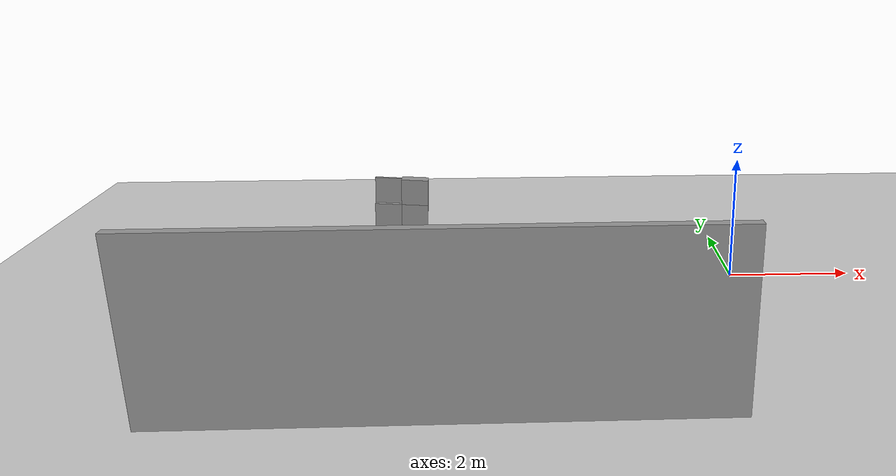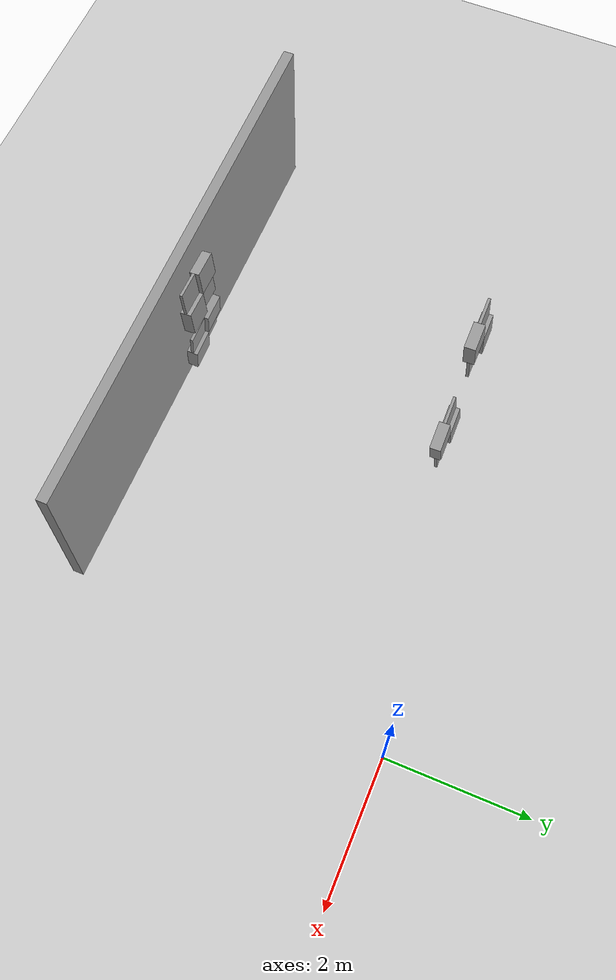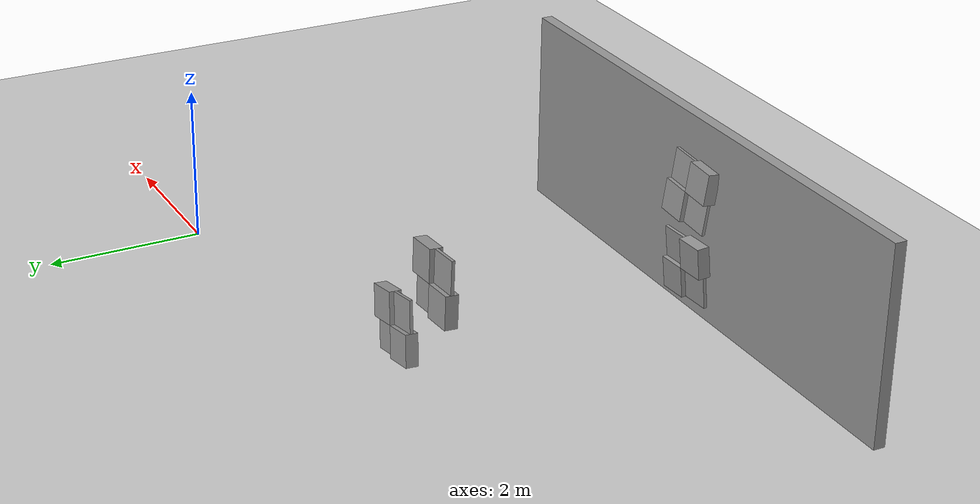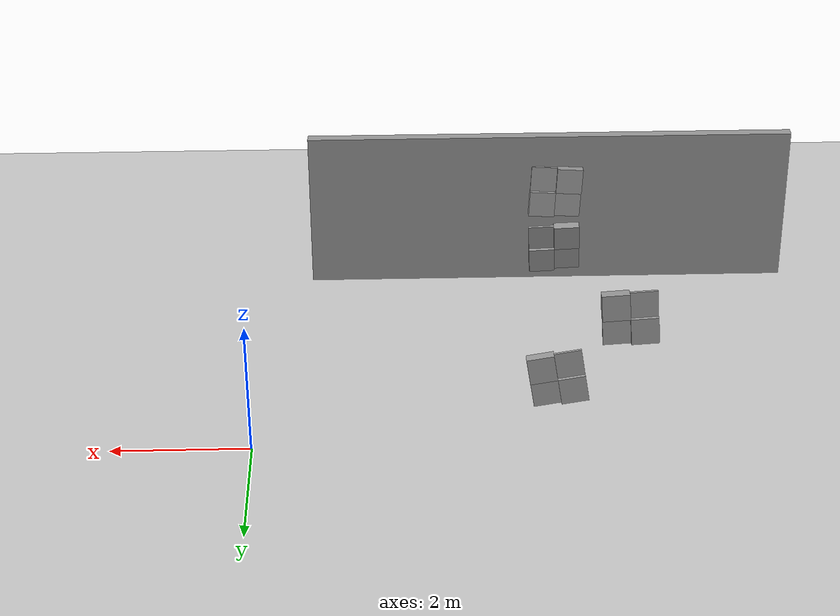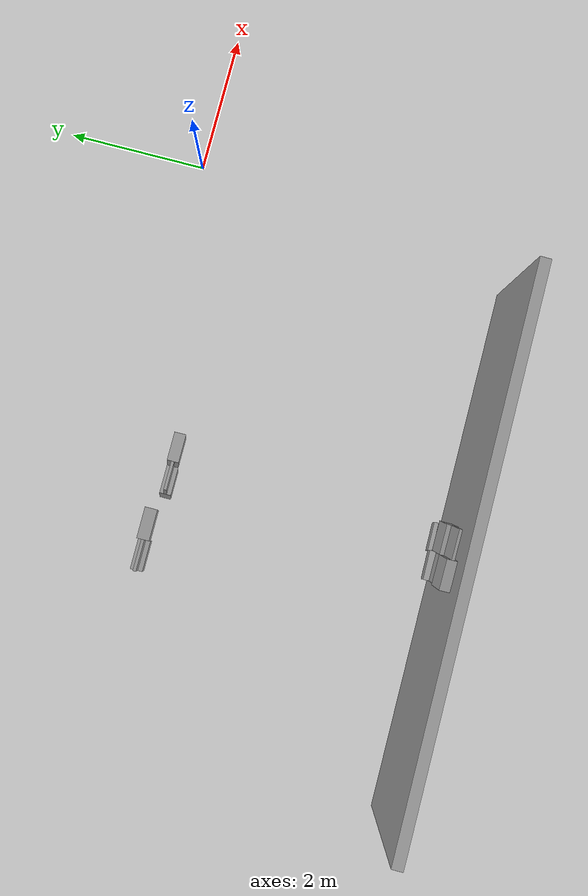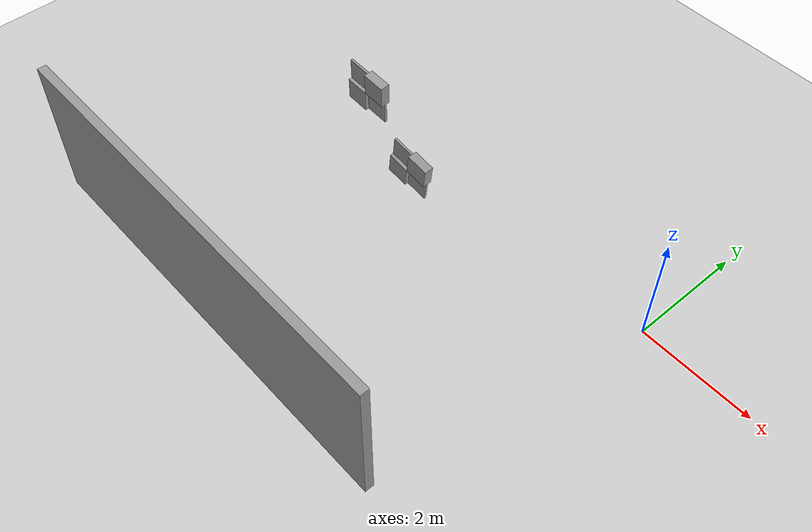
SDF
<sdf version="1.7">
 <world name="default">
  <model name="demo_clean">
   <static>1</static>
   <link name="Wall_2">
    <collision name="Wall_2_Collision">
     <geometry><box><size>7.5 0.15 2.5</size></box></geometry>
     <pose>0 0 1.25 0 -0 0</pose>
     <surface>
      <friction>
       <ode><mu>1</mu><mu2>1</mu2><fdir1>0 0 0</fdir1><slip1>0</slip1><slip2>0</slip2></ode>
       <torsional>
        <coefficient>1</coefficient>
        <patch_radius>0</patch_radius>
        <surface_radius>0</surface_radius>
        <use_patch_radius>1</use_patch_radius>
        <ode><slip>0</slip></ode>
       </torsional>
      </friction>
      <bounce><restitution_coefficient>0</restitution_coefficient><threshold>1e+06</threshold></bounce>
      <contact>
       <collide_without_contact>0</collide_without_contact>
       <collide_without_contact_bitmask>1</collide_without_contact_bitmask>
       <collide_bitmask>1</collide_bitmask>
       <ode>
        <soft_cfm>0</soft_cfm>
        <soft_erp>0.2</soft_erp>
        <kp>1e+13</kp>
        <kd>1</kd>
        <max_vel>0.01</max_vel>
        <min_depth>0</min_depth>
       </ode>
       <bullet>
        <split_impulse>1</split_impulse>
        <split_impulse_penetration_threshold>-0.01</split_impulse_penetration_threshold>
        <soft_cfm>0</soft_cfm>
        <soft_erp>0.2</soft_erp>
        <kp>1e+13</kp>
        <kd>1</kd>
       </bullet>
      </contact>
     </surface>
    </collision>
    <visual name="Wall_2_Visual">
     <geometry><box><size>7.5 0.15 2.5</size></box></geometry>
     <material>
      <script><name>Gazebo/Grey</name><uri>file://media/materials/scripts/gazebo.material</uri></script>
      <ambient>1 1 1 1</ambient>
      <shader type="pixel"><normal_map>default</normal_map></shader>
     </material>
     <pose>0 0 1.25 0 -0 0</pose>
    </visual>
    <pose>-4.49149 -4.74 0 0 -0 0</pose>
   </link>
  </model>
  <model name="ground_plane">
   <static>1</static>
   <link name="link">
    <collision name="collision">
     <geometry><plane><normal>0 0 1</normal><size>100 100</size></plane></geometry>
     <surface>
      <contact><collide_bitmask>65535</collide_bitmask></contact>
      <friction><ode><mu>100</mu><mu2>50</mu2></ode></friction>
     </surface>
    </collision>
    <visual name="visual">
     <cast_shadows>0</cast_shadows>
     <geometry><plane><normal>0 0 1</normal><size>100 100</size></plane></geometry>
     <material>
      <script><uri>file://media/materials/scripts/gazebo.material</uri><name>Gazebo/Grey</name></script>
     </material>
    </visual>
   </link>
  </model>
  <model name="wall_slate_21">
   <static>1</static>
   <link name="link_0">
    <inertial><mass>1</mass></inertial>
    <gravity>0</gravity>
    <visual name="visual">
     <pose>0 0.2 0.2 0 -0 0</pose>
     <geometry><box><size>0.16 0.4 0.4</size></box></geometry>
     <material>
      <lighting>1</lighting>
      <script><uri>file://media/materials/scripts/gazebo.material</uri><name>Gazebo/Grey</name></script>
      <shader type="pixel"><normal_map>__default__</normal_map></shader>
      <ambient>0.3 0.3 0.3 1</ambient>
      <diffuse>0.7 0.7 0.7 1</diffuse>
      <specular>0.01 0.01 0.01 1</specular>
      <emissive>0 0 0 1</emissive>
     </material>
    </visual>
    <visual name="ModelPreview_0::link_0::visual_1">
     <pose>0 0.2 -0.2 0 -0 0</pose>
     <geometry><box><size>0.04 0.4 0.4</size></box></geometry>
     <material>
      <lighting>1</lighting>
      <script><uri>file://media/materials/scripts/gazebo.material</uri><name>Gazebo/Grey</name></script>
      <shader type="pixel"><normal_map>__default__</normal_map></shader>
      <ambient>0.3 0.3 0.3 1</ambient>
      <diffuse>0.7 0.7 0.7 1</diffuse>
      <specular>0.01 0.01 0.01 1</specular>
      <emissive>0 0 0 1</emissive>
     </material>
    </visual>
    <visual name="ModelPreview_0::link_0::visual_2">
     <pose>0 -0.2 0.2 0 -0 0</pose>
     <geometry><box><size>0.04 0.4 0.4</size></box></geometry>
     <material>
      <lighting>1</lighting>
      <script><uri>file://media/materials/scripts/gazebo.material</uri><name>Gazebo/Grey</name></script>
      <shader type="pixel"><normal_map>__default__</normal_map></shader>
      <ambient>0.3 0.3 0.3 1</ambient>
      <diffuse>0.7 0.7 0.7 1</diffuse>
      <specular>0.01 0.01 0.01 1</specular>
      <emissive>0 0 0 1</emissive>
     </material>
    </visual>
    <visual name="ModelPreview_0::link_0::visual_3">
     <pose>0 -0.2 -0.2 0 -0 0</pose>
     <geometry><box><size>0.16 0.4 0.4</size></box></geometry>
     <material>
      <lighting>1</lighting>
      <script><uri>file://media/materials/scripts/gazebo.material</uri><name>Gazebo/Grey</name></script>
      <shader type="pixel"><normal_map>__default__</normal_map></shader>
      <ambient>0.3 0.3 0.3 1</ambient>
      <diffuse>0.7 0.7 0.7 1</diffuse>
      <specular>0.01 0.01 0.01 1</specular>
      <emissive>0 0 0 1</emissive>
     </material>
    </visual>
    <collision name="collision_2">
     <pose>0 -0.2 0.2 0 -0 0</pose>
     <geometry><box><size>0.04 0.4 0.4</size></box></geometry>
     <surface>
      <friction>
       <ode><mu>1</mu><mu2>1</mu2><fdir1>0 0 0</fdir1><slip1>0</slip1><slip2>0</slip2></ode>
       <torsional>
        <coefficient>1</coefficient>
        <patch_radius>0</patch_radius>
        <surface_radius>0</surface_radius>
        <use_patch_radius>1</use_patch_radius>
        <ode><slip>0</slip></ode>
       </torsional>
      </friction>
      <bounce><restitution_coefficient>0</restitution_coefficient><threshold>1e+06</threshold></bounce>
      <contact>
       <collide_without_contact>0</collide_without_contact>
       <collide_without_contact_bitmask>1</collide_without_contact_bitmask>
       <collide_bitmask>1</collide_bitmask>
       <ode>
        <soft_cfm>0</soft_cfm>
        <soft_erp>0.2</soft_erp>
        <kp>1e+13</kp>
        <kd>1</kd>
        <max_vel>0.01</max_vel>
        <min_depth>0</min_depth>
       </ode>
       <bullet>
        <split_impulse>1</split_impulse>
        <split_impulse_penetration_threshold>-0.01</split_impulse_penetration_threshold>
        <soft_cfm>0</soft_cfm>
        <soft_erp>0.2</soft_erp>
        <kp>1e+13</kp>
        <kd>1</kd>
       </bullet>
      </contact>
     </surface>
    </collision>
    <collision name="collision_1">
     <pose>0 0.2 -0.2 0 -0 0</pose>
     <geometry><box><size>0.04 0.4 0.4</size></box></geometry>
     <surface>
      <friction>
       <ode><mu>1</mu><mu2>1</mu2><fdir1>0 0 0</fdir1><slip1>0</slip1><slip2>0</slip2></ode>
       <torsional>
        <coefficient>1</coefficient>
        <patch_radius>0</patch_radius>
        <surface_radius>0</surface_radius>
        <use_patch_radius>1</use_patch_radius>
        <ode><slip>0</slip></ode>
       </torsional>
      </friction>
      <bounce><restitution_coefficient>0</restitution_coefficient><threshold>1e+06</threshold></bounce>
      <contact>
       <collide_without_contact>0</collide_without_contact>
       <collide_without_contact_bitmask>1</collide_without_contact_bitmask>
       <collide_bitmask>1</collide_bitmask>
       <ode>
        <soft_cfm>0</soft_cfm>
        <soft_erp>0.2</soft_erp>
        <kp>1e+13</kp>
        <kd>1</kd>
        <max_vel>0.01</max_vel>
        <min_depth>0</min_depth>
       </ode>
       <bullet>
        <split_impulse>1</split_impulse>
        <split_impulse_penetration_threshold>-0.01</split_impulse_penetration_threshold>
        <soft_cfm>0</soft_cfm>
        <soft_erp>0.2</soft_erp>
        <kp>1e+13</kp>
        <kd>1</kd>
       </bullet>
      </contact>
     </surface>
    </collision>
    <collision name="collision_4">
     <pose>0 0.2 0.2 0 -0 0</pose>
     <geometry><box><size>0.16 0.4 0.4</size></box></geometry>
     <surface>
      <friction>
       <ode><mu>1</mu><mu2>1</mu2><fdir1>0 0 0</fdir1><slip1>0</slip1><slip2>0</slip2></ode>
       <torsional>
        <coefficient>1</coefficient>
        <patch_radius>0</patch_radius>
        <surface_radius>0</surface_radius>
        <use_patch_radius>1</use_patch_radius>
        <ode><slip>0</slip></ode>
       </torsional>
      </friction>
      <bounce><restitution_coefficient>0</restitution_coefficient><threshold>1e+06</threshold></bounce>
      <contact>
       <collide_without_contact>0</collide_without_contact>
       <collide_without_contact_bitmask>1</collide_without_contact_bitmask>
       <collide_bitmask>1</collide_bitmask>
       <ode>
        <soft_cfm>0</soft_cfm>
        <soft_erp>0.2</soft_erp>
        <kp>1e+13</kp>
        <kd>1</kd>
        <max_vel>0.01</max_vel>
        <min_depth>0</min_depth>
       </ode>
       <bullet>
        <split_impulse>1</split_impulse>
        <split_impulse_penetration_threshold>-0.01</split_impulse_penetration_threshold>
        <soft_cfm>0</soft_cfm>
        <soft_erp>0.2</soft_erp>
        <kp>1e+13</kp>
        <kd>1</kd>
       </bullet>
      </contact>
     </surface>
    </collision>
    <collision name="collision_3">
     <pose>0 -0.2 -0.2 0 -0 0</pose>
     <geometry><box><size>0.16 0.4 0.4</size></box></geometry>
     <surface>
      <friction>
       <ode><mu>1</mu><mu2>1</mu2><fdir1>0 0 0</fdir1><slip1>0</slip1><slip2>0</slip2></ode>
       <torsional>
        <coefficient>1</coefficient>
        <patch_radius>0</patch_radius>
        <surface_radius>0</surface_radius>
        <use_patch_radius>1</use_patch_radius>
        <ode><slip>0</slip></ode>
       </torsional>
      </friction>
      <bounce><restitution_coefficient>0</restitution_coefficient><threshold>1e+06</threshold></bounce>
      <contact>
       <collide_without_contact>0</collide_without_contact>
       <collide_without_contact_bitmask>1</collide_without_contact_bitmask>
       <collide_bitmask>1</collide_bitmask>
       <ode>
        <soft_cfm>0</soft_cfm>
        <soft_erp>0.2</soft_erp>
        <kp>1e+13</kp>
        <kd>1</kd>
        <max_vel>0.01</max_vel>
        <min_depth>0</min_depth>
       </ode>
       <bullet>
        <split_impulse>1</split_impulse>
        <split_impulse_penetration_threshold>-0.01</split_impulse_penetration_threshold>
        <soft_cfm>0</soft_cfm>
        <soft_erp>0.2</soft_erp>
        <kp>1e+13</kp>
        <kd>1</kd>
       </bullet>
      </contact>
     </surface>
    </collision>
   </link>
   <pose>-5.37149 -0.783826 1.6 -0.06 0.06 -1.5659</pose>
  </model>
  <model name="wall_slate_46">
   <static>1</static>
   <link name="link_0">
    <inertial><mass>1</mass></inertial>
    <gravity>0</gravity>
    <visual name="visual">
     <pose>0 0.2 0.2 0 -0 0</pose>
     <geometry><box><size>0.16 0.4 0.4</size></box></geometry>
     <material>
      <lighting>1</lighting>
      <script><uri>file://media/materials/scripts/gazebo.material</uri><name>Gazebo/Grey</name></script>
      <shader type="pixel"><normal_map>__default__</normal_map></shader>
      <ambient>0.3 0.3 0.3 1</ambient>
      <diffuse>0.7 0.7 0.7 1</diffuse>
      <specular>0.01 0.01 0.01 1</specular>
      <emissive>0 0 0 1</emissive>
     </material>
    </visual>
    <visual name="ModelPreview_0::link_0::visual_1">
     <pose>0 0.2 -0.2 0 -0 0</pose>
     <geometry><box><size>0.04 0.4 0.4</size></box></geometry>
     <material>
      <lighting>1</lighting>
      <script><uri>file://media/materials/scripts/gazebo.material</uri><name>Gazebo/Grey</name></script>
      <shader type="pixel"><normal_map>__default__</normal_map></shader>
      <ambient>0.3 0.3 0.3 1</ambient>
      <diffuse>0.7 0.7 0.7 1</diffuse>
      <specular>0.01 0.01 0.01 1</specular>
      <emissive>0 0 0 1</emissive>
     </material>
    </visual>
    <visual name="ModelPreview_0::link_0::visual_2">
     <pose>0 -0.2 0.2 0 -0 0</pose>
     <geometry><box><size>0.04 0.4 0.4</size></box></geometry>
     <material>
      <lighting>1</lighting>
      <script><uri>file://media/materials/scripts/gazebo.material</uri><name>Gazebo/Grey</name></script>
      <shader type="pixel"><normal_map>__default__</normal_map></shader>
      <ambient>0.3 0.3 0.3 1</ambient>
      <diffuse>0.7 0.7 0.7 1</diffuse>
      <specular>0.01 0.01 0.01 1</specular>
      <emissive>0 0 0 1</emissive>
     </material>
    </visual>
    <visual name="ModelPreview_0::link_0::visual_3">
     <pose>0 -0.2 -0.2 0 -0 0</pose>
     <geometry><box><size>0.16 0.4 0.4</size></box></geometry>
     <material>
      <lighting>1</lighting>
      <script><uri>file://media/materials/scripts/gazebo.material</uri><name>Gazebo/Grey</name></script>
      <shader type="pixel"><normal_map>__default__</normal_map></shader>
      <ambient>0.3 0.3 0.3 1</ambient>
      <diffuse>0.7 0.7 0.7 1</diffuse>
      <specular>0.01 0.01 0.01 1</specular>
      <emissive>0 0 0 1</emissive>
     </material>
    </visual>
    <collision name="collision_2">
     <pose>0 -0.2 0.2 0 -0 0</pose>
     <geometry><box><size>0.04 0.4 0.4</size></box></geometry>
     <surface>
      <friction>
       <ode><mu>1</mu><mu2>1</mu2><fdir1>0 0 0</fdir1><slip1>0</slip1><slip2>0</slip2></ode>
       <torsional>
        <coefficient>1</coefficient>
        <patch_radius>0</patch_radius>
        <surface_radius>0</surface_radius>
        <use_patch_radius>1</use_patch_radius>
        <ode><slip>0</slip></ode>
       </torsional>
      </friction>
      <bounce><restitution_coefficient>0</restitution_coefficient><threshold>1e+06</threshold></bounce>
      <contact>
       <collide_without_contact>0</collide_without_contact>
       <collide_without_contact_bitmask>1</collide_without_contact_bitmask>
       <collide_bitmask>1</collide_bitmask>
       <ode>
        <soft_cfm>0</soft_cfm>
        <soft_erp>0.2</soft_erp>
        <kp>1e+13</kp>
        <kd>1</kd>
        <max_vel>0.01</max_vel>
        <min_depth>0</min_depth>
       </ode>
       <bullet>
        <split_impulse>1</split_impulse>
        <split_impulse_penetration_threshold>-0.01</split_impulse_penetration_threshold>
        <soft_cfm>0</soft_cfm>
        <soft_erp>0.2</soft_erp>
        <kp>1e+13</kp>
        <kd>1</kd>
       </bullet>
      </contact>
     </surface>
    </collision>
    <collision name="collision_1">
     <pose>0 0.2 -0.2 0 -0 0</pose>
     <geometry><box><size>0.04 0.4 0.4</size></box></geometry>
     <surface>
      <friction>
       <ode><mu>1</mu><mu2>1</mu2><fdir1>0 0 0</fdir1><slip1>0</slip1><slip2>0</slip2></ode>
       <torsional>
        <coefficient>1</coefficient>
        <patch_radius>0</patch_radius>
        <surface_radius>0</surface_radius>
        <use_patch_radius>1</use_patch_radius>
        <ode><slip>0</slip></ode>
       </torsional>
      </friction>
      <bounce><restitution_coefficient>0</restitution_coefficient><threshold>1e+06</threshold></bounce>
      <contact>
       <collide_without_contact>0</collide_without_contact>
       <collide_without_contact_bitmask>1</collide_without_contact_bitmask>
       <collide_bitmask>1</collide_bitmask>
       <ode>
        <soft_cfm>0</soft_cfm>
        <soft_erp>0.2</soft_erp>
        <kp>1e+13</kp>
        <kd>1</kd>
        <max_vel>0.01</max_vel>
        <min_depth>0</min_depth>
       </ode>
       <bullet>
        <split_impulse>1</split_impulse>
        <split_impulse_penetration_threshold>-0.01</split_impulse_penetration_threshold>
        <soft_cfm>0</soft_cfm>
        <soft_erp>0.2</soft_erp>
        <kp>1e+13</kp>
        <kd>1</kd>
       </bullet>
      </contact>
     </surface>
    </collision>
    <collision name="collision_4">
     <pose>0 0.2 0.2 0 -0 0</pose>
     <geometry><box><size>0.16 0.4 0.4</size></box></geometry>
     <surface>
      <friction>
       <ode><mu>1</mu><mu2>1</mu2><fdir1>0 0 0</fdir1><slip1>0</slip1><slip2>0</slip2></ode>
       <torsional>
        <coefficient>1</coefficient>
        <patch_radius>0</patch_radius>
        <surface_radius>0</surface_radius>
        <use_patch_radius>1</use_patch_radius>
        <ode><slip>0</slip></ode>
       </torsional>
      </friction>
      <bounce><restitution_coefficient>0</restitution_coefficient><threshold>1e+06</threshold></bounce>
      <contact>
       <collide_without_contact>0</collide_without_contact>
       <collide_without_contact_bitmask>1</collide_without_contact_bitmask>
       <collide_bitmask>1</collide_bitmask>
       <ode>
        <soft_cfm>0</soft_cfm>
        <soft_erp>0.2</soft_erp>
        <kp>1e+13</kp>
        <kd>1</kd>
        <max_vel>0.01</max_vel>
        <min_depth>0</min_depth>
       </ode>
       <bullet>
        <split_impulse>1</split_impulse>
        <split_impulse_penetration_threshold>-0.01</split_impulse_penetration_threshold>
        <soft_cfm>0</soft_cfm>
        <soft_erp>0.2</soft_erp>
        <kp>1e+13</kp>
        <kd>1</kd>
       </bullet>
      </contact>
     </surface>
    </collision>
    <collision name="collision_3">
     <pose>0 -0.2 -0.2 0 -0 0</pose>
     <geometry><box><size>0.16 0.4 0.4</size></box></geometry>
     <surface>
      <friction>
       <ode><mu>1</mu><mu2>1</mu2><fdir1>0 0 0</fdir1><slip1>0</slip1><slip2>0</slip2></ode>
       <torsional>
        <coefficient>1</coefficient>
        <patch_radius>0</patch_radius>
        <surface_radius>0</surface_radius>
        <use_patch_radius>1</use_patch_radius>
        <ode><slip>0</slip></ode>
       </torsional>
      </friction>
      <bounce><restitution_coefficient>0</restitution_coefficient><threshold>1e+06</threshold></bounce>
      <contact>
       <collide_without_contact>0</collide_without_contact>
       <collide_without_contact_bitmask>1</collide_without_contact_bitmask>
       <collide_bitmask>1</collide_bitmask>
       <ode>
        <soft_cfm>0</soft_cfm>
        <soft_erp>0.2</soft_erp>
        <kp>1e+13</kp>
        <kd>1</kd>
        <max_vel>0.01</max_vel>
        <min_depth>0</min_depth>
       </ode>
       <bullet>
        <split_impulse>1</split_impulse>
        <split_impulse_penetration_threshold>-0.01</split_impulse_penetration_threshold>
        <soft_cfm>0</soft_cfm>
        <soft_erp>0.2</soft_erp>
        <kp>1e+13</kp>
        <kd>1</kd>
       </bullet>
      </contact>
     </surface>
    </collision>
   </link>
   <pose>-4.59149 -4.565 1.6 -0.06 -0.1 1.5757</pose>
  </model>
  <model name="wall_slate_50">
   <static>1</static>
   <link name="link_0">
    <inertial><mass>1</mass></inertial>
    <gravity>0</gravity>
    <visual name="visual">
     <pose>0 0.2 0.2 0 -0 0</pose>
     <geometry><box><size>0.16 0.4 0.4</size></box></geometry>
     <material>
      <lighting>1</lighting>
      <script><uri>file://media/materials/scripts/gazebo.material</uri><name>Gazebo/Grey</name></script>
      <shader type="pixel"><normal_map>__default__</normal_map></shader>
      <ambient>0.3 0.3 0.3 1</ambient>
      <diffuse>0.7 0.7 0.7 1</diffuse>
      <specular>0.01 0.01 0.01 1</specular>
      <emissive>0 0 0 1</emissive>
     </material>
    </visual>
    <visual name="ModelPreview_0::link_0::visual_1">
     <pose>0 0.2 -0.2 0 -0 0</pose>
     <geometry><box><size>0.04 0.4 0.4</size></box></geometry>
     <material>
      <lighting>1</lighting>
      <script><uri>file://media/materials/scripts/gazebo.material</uri><name>Gazebo/Grey</name></script>
      <shader type="pixel"><normal_map>__default__</normal_map></shader>
      <ambient>0.3 0.3 0.3 1</ambient>
      <diffuse>0.7 0.7 0.7 1</diffuse>
      <specular>0.01 0.01 0.01 1</specular>
      <emissive>0 0 0 1</emissive>
     </material>
    </visual>
    <visual name="ModelPreview_0::link_0::visual_2">
     <pose>0 -0.2 0.2 0 -0 0</pose>
     <geometry><box><size>0.04 0.4 0.4</size></box></geometry>
     <material>
      <lighting>1</lighting>
      <script><uri>file://media/materials/scripts/gazebo.material</uri><name>Gazebo/Grey</name></script>
      <shader type="pixel"><normal_map>__default__</normal_map></shader>
      <ambient>0.3 0.3 0.3 1</ambient>
      <diffuse>0.7 0.7 0.7 1</diffuse>
      <specular>0.01 0.01 0.01 1</specular>
      <emissive>0 0 0 1</emissive>
     </material>
    </visual>
    <visual name="ModelPreview_0::link_0::visual_3">
     <pose>0 -0.2 -0.2 0 -0 0</pose>
     <geometry><box><size>0.16 0.4 0.4</size></box></geometry>
     <material>
      <lighting>1</lighting>
      <script><uri>file://media/materials/scripts/gazebo.material</uri><name>Gazebo/Grey</name></script>
      <shader type="pixel"><normal_map>__default__</normal_map></shader>
      <ambient>0.3 0.3 0.3 1</ambient>
      <diffuse>0.7 0.7 0.7 1</diffuse>
      <specular>0.01 0.01 0.01 1</specular>
      <emissive>0 0 0 1</emissive>
     </material>
    </visual>
    <collision name="collision_2">
     <pose>0 -0.2 0.2 0 -0 0</pose>
     <geometry><box><size>0.04 0.4 0.4</size></box></geometry>
     <surface>
      <friction>
       <ode><mu>1</mu><mu2>1</mu2><fdir1>0 0 0</fdir1><slip1>0</slip1><slip2>0</slip2></ode>
       <torsional>
        <coefficient>1</coefficient>
        <patch_radius>0</patch_radius>
        <surface_radius>0</surface_radius>
        <use_patch_radius>1</use_patch_radius>
        <ode><slip>0</slip></ode>
       </torsional>
      </friction>
      <bounce><restitution_coefficient>0</restitution_coefficient><threshold>1e+06</threshold></bounce>
      <contact>
       <collide_without_contact>0</collide_without_contact>
       <collide_without_contact_bitmask>1</collide_without_contact_bitmask>
       <collide_bitmask>1</collide_bitmask>
       <ode>
        <soft_cfm>0</soft_cfm>
        <soft_erp>0.2</soft_erp>
        <kp>1e+13</kp>
        <kd>1</kd>
        <max_vel>0.01</max_vel>
        <min_depth>0</min_depth>
       </ode>
       <bullet>
        <split_impulse>1</split_impulse>
        <split_impulse_penetration_threshold>-0.01</split_impulse_penetration_threshold>
        <soft_cfm>0</soft_cfm>
        <soft_erp>0.2</soft_erp>
        <kp>1e+13</kp>
        <kd>1</kd>
       </bullet>
      </contact>
     </surface>
    </collision>
    <collision name="collision_1">
     <pose>0 0.2 -0.2 0 -0 0</pose>
     <geometry><box><size>0.04 0.4 0.4</size></box></geometry>
     <surface>
      <friction>
       <ode><mu>1</mu><mu2>1</mu2><fdir1>0 0 0</fdir1><slip1>0</slip1><slip2>0</slip2></ode>
       <torsional>
        <coefficient>1</coefficient>
        <patch_radius>0</patch_radius>
        <surface_radius>0</surface_radius>
        <use_patch_radius>1</use_patch_radius>
        <ode><slip>0</slip></ode>
       </torsional>
      </friction>
      <bounce><restitution_coefficient>0</restitution_coefficient><threshold>1e+06</threshold></bounce>
      <contact>
       <collide_without_contact>0</collide_without_contact>
       <collide_without_contact_bitmask>1</collide_without_contact_bitmask>
       <collide_bitmask>1</collide_bitmask>
       <ode>
        <soft_cfm>0</soft_cfm>
        <soft_erp>0.2</soft_erp>
        <kp>1e+13</kp>
        <kd>1</kd>
        <max_vel>0.01</max_vel>
        <min_depth>0</min_depth>
       </ode>
       <bullet>
        <split_impulse>1</split_impulse>
        <split_impulse_penetration_threshold>-0.01</split_impulse_penetration_threshold>
        <soft_cfm>0</soft_cfm>
        <soft_erp>0.2</soft_erp>
        <kp>1e+13</kp>
        <kd>1</kd>
       </bullet>
      </contact>
     </surface>
    </collision>
    <collision name="collision_4">
     <pose>0 0.2 0.2 0 -0 0</pose>
     <geometry><box><size>0.16 0.4 0.4</size></box></geometry>
     <surface>
      <friction>
       <ode><mu>1</mu><mu2>1</mu2><fdir1>0 0 0</fdir1><slip1>0</slip1><slip2>0</slip2></ode>
       <torsional>
        <coefficient>1</coefficient>
        <patch_radius>0</patch_radius>
        <surface_radius>0</surface_radius>
        <use_patch_radius>1</use_patch_radius>
        <ode><slip>0</slip></ode>
       </torsional>
      </friction>
      <bounce><restitution_coefficient>0</restitution_coefficient><threshold>1e+06</threshold></bounce>
      <contact>
       <collide_without_contact>0</collide_without_contact>
       <collide_without_contact_bitmask>1</collide_without_contact_bitmask>
       <collide_bitmask>1</collide_bitmask>
       <ode>
        <soft_cfm>0</soft_cfm>
        <soft_erp>0.2</soft_erp>
        <kp>1e+13</kp>
        <kd>1</kd>
        <max_vel>0.01</max_vel>
        <min_depth>0</min_depth>
       </ode>
       <bullet>
        <split_impulse>1</split_impulse>
        <split_impulse_penetration_threshold>-0.01</split_impulse_penetration_threshold>
        <soft_cfm>0</soft_cfm>
        <soft_erp>0.2</soft_erp>
        <kp>1e+13</kp>
        <kd>1</kd>
       </bullet>
      </contact>
     </surface>
    </collision>
    <collision name="collision_3">
     <pose>0 -0.2 -0.2 0 -0 0</pose>
     <geometry><box><size>0.16 0.4 0.4</size></box></geometry>
     <surface>
      <friction>
       <ode><mu>1</mu><mu2>1</mu2><fdir1>0 0 0</fdir1><slip1>0</slip1><slip2>0</slip2></ode>
       <torsional>
        <coefficient>1</coefficient>
        <patch_radius>0</patch_radius>
        <surface_radius>0</surface_radius>
        <use_patch_radius>1</use_patch_radius>
        <ode><slip>0</slip></ode>
       </torsional>
      </friction>
      <bounce><restitution_coefficient>0</restitution_coefficient><threshold>1e+06</threshold></bounce>
      <contact>
       <collide_without_contact>0</collide_without_contact>
       <collide_without_contact_bitmask>1</collide_without_contact_bitmask>
       <collide_bitmask>1</collide_bitmask>
       <ode>
        <soft_cfm>0</soft_cfm>
        <soft_erp>0.2</soft_erp>
        <kp>1e+13</kp>
        <kd>1</kd>
        <max_vel>0.01</max_vel>
        <min_depth>0</min_depth>
       </ode>
       <bullet>
        <split_impulse>1</split_impulse>
        <split_impulse_penetration_threshold>-0.01</split_impulse_penetration_threshold>
        <soft_cfm>0</soft_cfm>
        <soft_erp>0.2</soft_erp>
        <kp>1e+13</kp>
        <kd>1</kd>
       </bullet>
      </contact>
     </surface>
    </collision>
   </link>
   <pose>-4.59149 -4.565 0.6 0.04 0.08 1.5757</pose>
  </model>
  <model name="wall_slate_66">
   <static>1</static>
   <link name="link_0">
    <inertial><mass>1</mass></inertial>
    <gravity>0</gravity>
    <visual name="visual">
     <pose>0 0.2 0.2 0 -0 0</pose>
     <geometry><box><size>0.16 0.4 0.4</size></box></geometry>
     <material>
      <lighting>1</lighting>
      <script><uri>file://media/materials/scripts/gazebo.material</uri><name>Gazebo/Grey</name></script>
      <shader type="pixel"><normal_map>__default__</normal_map></shader>
      <ambient>0.3 0.3 0.3 1</ambient>
      <diffuse>0.7 0.7 0.7 1</diffuse>
      <specular>0.01 0.01 0.01 1</specular>
      <emissive>0 0 0 1</emissive>
     </material>
    </visual>
    <visual name="ModelPreview_0::link_0::visual_1">
     <pose>0 0.2 -0.2 0 -0 0</pose>
     <geometry><box><size>0.04 0.4 0.4</size></box></geometry>
     <material>
      <lighting>1</lighting>
      <script><uri>file://media/materials/scripts/gazebo.material</uri><name>Gazebo/Grey</name></script>
      <shader type="pixel"><normal_map>__default__</normal_map></shader>
      <ambient>0.3 0.3 0.3 1</ambient>
      <diffuse>0.7 0.7 0.7 1</diffuse>
      <specular>0.01 0.01 0.01 1</specular>
      <emissive>0 0 0 1</emissive>
     </material>
    </visual>
    <visual name="ModelPreview_0::link_0::visual_2">
     <pose>0 -0.2 0.2 0 -0 0</pose>
     <geometry><box><size>0.04 0.4 0.4</size></box></geometry>
     <material>
      <lighting>1</lighting>
      <script><uri>file://media/materials/scripts/gazebo.material</uri><name>Gazebo/Grey</name></script>
      <shader type="pixel"><normal_map>__default__</normal_map></shader>
      <ambient>0.3 0.3 0.3 1</ambient>
      <diffuse>0.7 0.7 0.7 1</diffuse>
      <specular>0.01 0.01 0.01 1</specular>
      <emissive>0 0 0 1</emissive>
     </material>
    </visual>
    <visual name="ModelPreview_0::link_0::visual_3">
     <pose>0 -0.2 -0.2 0 -0 0</pose>
     <geometry><box><size>0.16 0.4 0.4</size></box></geometry>
     <material>
      <lighting>1</lighting>
      <script><uri>file://media/materials/scripts/gazebo.material</uri><name>Gazebo/Grey</name></script>
      <shader type="pixel"><normal_map>__default__</normal_map></shader>
      <ambient>0.3 0.3 0.3 1</ambient>
      <diffuse>0.7 0.7 0.7 1</diffuse>
      <specular>0.01 0.01 0.01 1</specular>
      <emissive>0 0 0 1</emissive>
     </material>
    </visual>
    <collision name="collision_2">
     <pose>0 -0.2 0.2 0 -0 0</pose>
     <geometry><box><size>0.04 0.4 0.4</size></box></geometry>
     <surface>
      <friction>
       <ode><mu>1</mu><mu2>1</mu2><fdir1>0 0 0</fdir1><slip1>0</slip1><slip2>0</slip2></ode>
       <torsional>
        <coefficient>1</coefficient>
        <patch_radius>0</patch_radius>
        <surface_radius>0</surface_radius>
        <use_patch_radius>1</use_patch_radius>
        <ode><slip>0</slip></ode>
       </torsional>
      </friction>
      <bounce><restitution_coefficient>0</restitution_coefficient><threshold>1e+06</threshold></bounce>
      <contact>
       <collide_without_contact>0</collide_without_contact>
       <collide_without_contact_bitmask>1</collide_without_contact_bitmask>
       <collide_bitmask>1</collide_bitmask>
       <ode>
        <soft_cfm>0</soft_cfm>
        <soft_erp>0.2</soft_erp>
        <kp>1e+13</kp>
        <kd>1</kd>
        <max_vel>0.01</max_vel>
        <min_depth>0</min_depth>
       </ode>
       <bullet>
        <split_impulse>1</split_impulse>
        <split_impulse_penetration_threshold>-0.01</split_impulse_penetration_threshold>
        <soft_cfm>0</soft_cfm>
        <soft_erp>0.2</soft_erp>
        <kp>1e+13</kp>
        <kd>1</kd>
       </bullet>
      </contact>
     </surface>
    </collision>
    <collision name="collision_1">
     <pose>0 0.2 -0.2 0 -0 0</pose>
     <geometry><box><size>0.04 0.4 0.4</size></box></geometry>
     <surface>
      <friction>
       <ode><mu>1</mu><mu2>1</mu2><fdir1>0 0 0</fdir1><slip1>0</slip1><slip2>0</slip2></ode>
       <torsional>
        <coefficient>1</coefficient>
        <patch_radius>0</patch_radius>
        <surface_radius>0</surface_radius>
        <use_patch_radius>1</use_patch_radius>
        <ode><slip>0</slip></ode>
       </torsional>
      </friction>
      <bounce><restitution_coefficient>0</restitution_coefficient><threshold>1e+06</threshold></bounce>
      <contact>
       <collide_without_contact>0</collide_without_contact>
       <collide_without_contact_bitmask>1</collide_without_contact_bitmask>
       <collide_bitmask>1</collide_bitmask>
       <ode>
        <soft_cfm>0</soft_cfm>
        <soft_erp>0.2</soft_erp>
        <kp>1e+13</kp>
        <kd>1</kd>
        <max_vel>0.01</max_vel>
        <min_depth>0</min_depth>
       </ode>
       <bullet>
        <split_impulse>1</split_impulse>
        <split_impulse_penetration_threshold>-0.01</split_impulse_penetration_threshold>
        <soft_cfm>0</soft_cfm>
        <soft_erp>0.2</soft_erp>
        <kp>1e+13</kp>
        <kd>1</kd>
       </bullet>
      </contact>
     </surface>
    </collision>
    <collision name="collision_4">
     <pose>0 0.2 0.2 0 -0 0</pose>
     <geometry><box><size>0.16 0.4 0.4</size></box></geometry>
     <surface>
      <friction>
       <ode><mu>1</mu><mu2>1</mu2><fdir1>0 0 0</fdir1><slip1>0</slip1><slip2>0</slip2></ode>
       <torsional>
        <coefficient>1</coefficient>
        <patch_radius>0</patch_radius>
        <surface_radius>0</surface_radius>
        <use_patch_radius>1</use_patch_radius>
        <ode><slip>0</slip></ode>
       </torsional>
      </friction>
      <bounce><restitution_coefficient>0</restitution_coefficient><threshold>1e+06</threshold></bounce>
      <contact>
       <collide_without_contact>0</collide_without_contact>
       <collide_without_contact_bitmask>1</collide_without_contact_bitmask>
       <collide_bitmask>1</collide_bitmask>
       <ode>
        <soft_cfm>0</soft_cfm>
        <soft_erp>0.2</soft_erp>
        <kp>1e+13</kp>
        <kd>1</kd>
        <max_vel>0.01</max_vel>
        <min_depth>0</min_depth>
       </ode>
       <bullet>
        <split_impulse>1</split_impulse>
        <split_impulse_penetration_threshold>-0.01</split_impulse_penetration_threshold>
        <soft_cfm>0</soft_cfm>
        <soft_erp>0.2</soft_erp>
        <kp>1e+13</kp>
        <kd>1</kd>
       </bullet>
      </contact>
     </surface>
    </collision>
    <collision name="collision_3">
     <pose>0 -0.2 -0.2 0 -0 0</pose>
     <geometry><box><size>0.16 0.4 0.4</size></box></geometry>
     <surface>
      <friction>
       <ode><mu>1</mu><mu2>1</mu2><fdir1>0 0 0</fdir1><slip1>0</slip1><slip2>0</slip2></ode>
       <torsional>
        <coefficient>1</coefficient>
        <patch_radius>0</patch_radius>
        <surface_radius>0</surface_radius>
        <use_patch_radius>1</use_patch_radius>
        <ode><slip>0</slip></ode>
       </torsional>
      </friction>
      <bounce><restitution_coefficient>0</restitution_coefficient><threshold>1e+06</threshold></bounce>
      <contact>
       <collide_without_contact>0</collide_without_contact>
       <collide_without_contact_bitmask>1</collide_without_contact_bitmask>
       <collide_bitmask>1</collide_bitmask>
       <ode>
        <soft_cfm>0</soft_cfm>
        <soft_erp>0.2</soft_erp>
        <kp>1e+13</kp>
        <kd>1</kd>
        <max_vel>0.01</max_vel>
        <min_depth>0</min_depth>
       </ode>
       <bullet>
        <split_impulse>1</split_impulse>
        <split_impulse_penetration_threshold>-0.01</split_impulse_penetration_threshold>
        <soft_cfm>0</soft_cfm>
        <soft_erp>0.2</soft_erp>
        <kp>1e+13</kp>
        <kd>1</kd>
       </bullet>
      </contact>
     </surface>
    </collision>
   </link>
   <pose>-4.37149 -0.783824 0.6 -0.16 0.06 -1.5659</pose>
  </model>
 </world>
</sdf>
